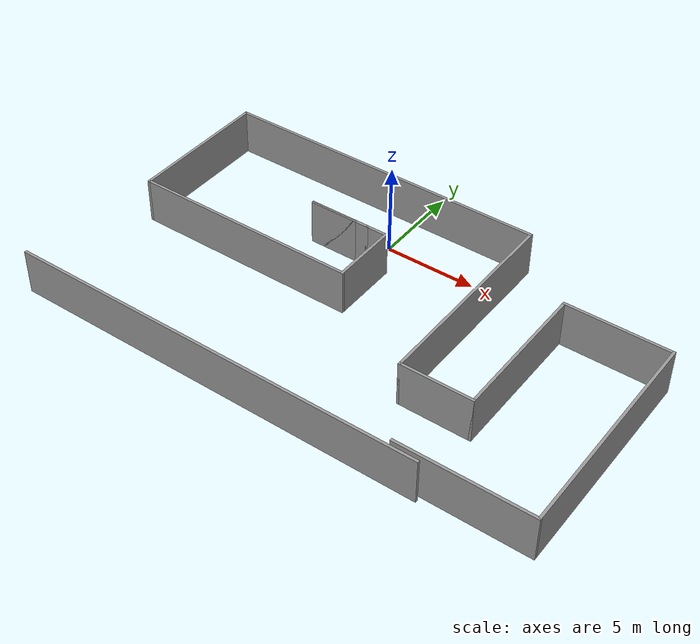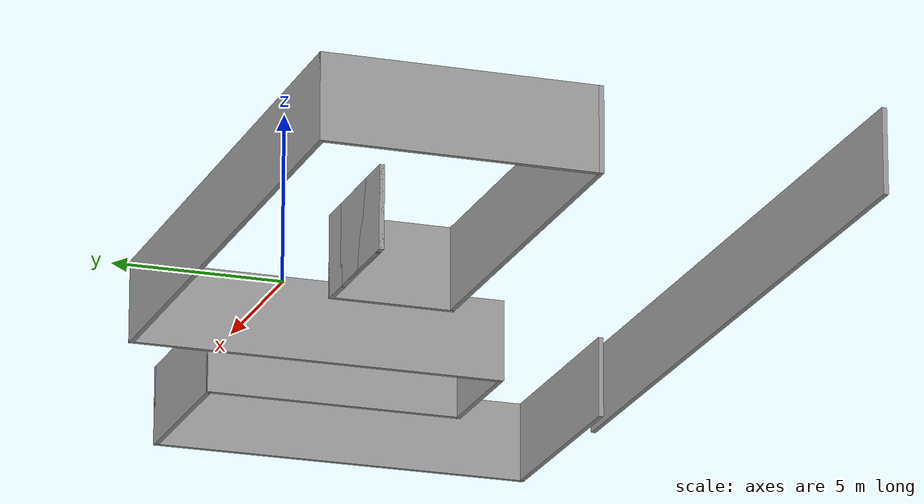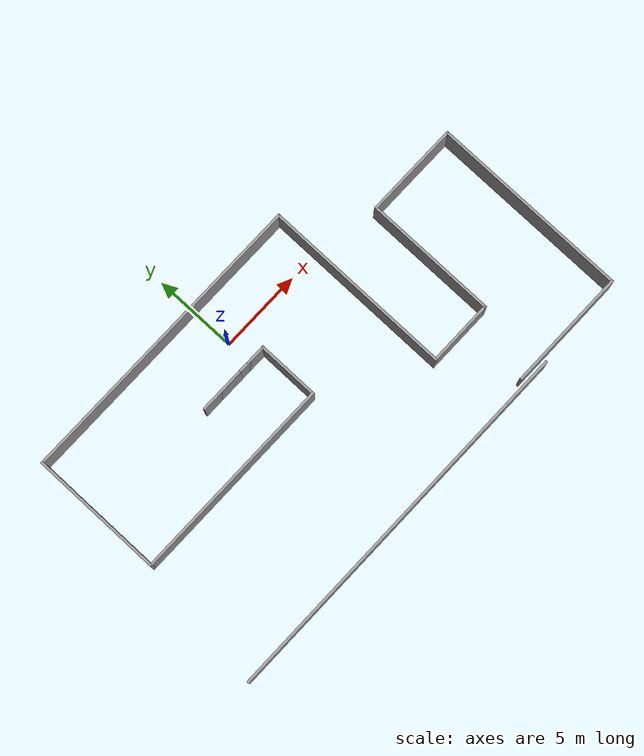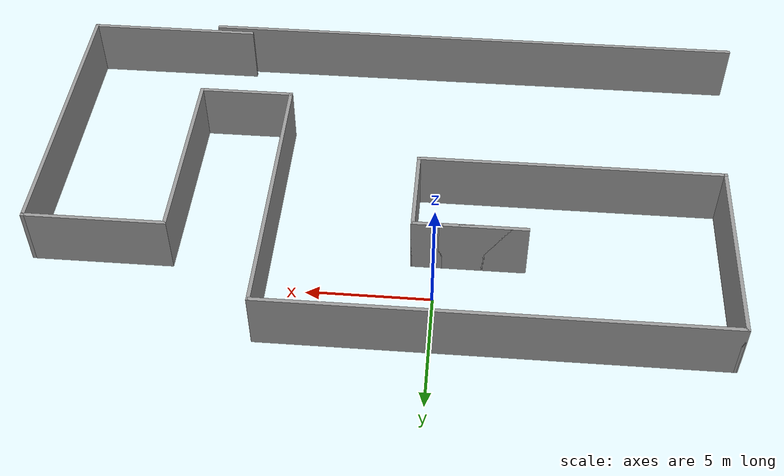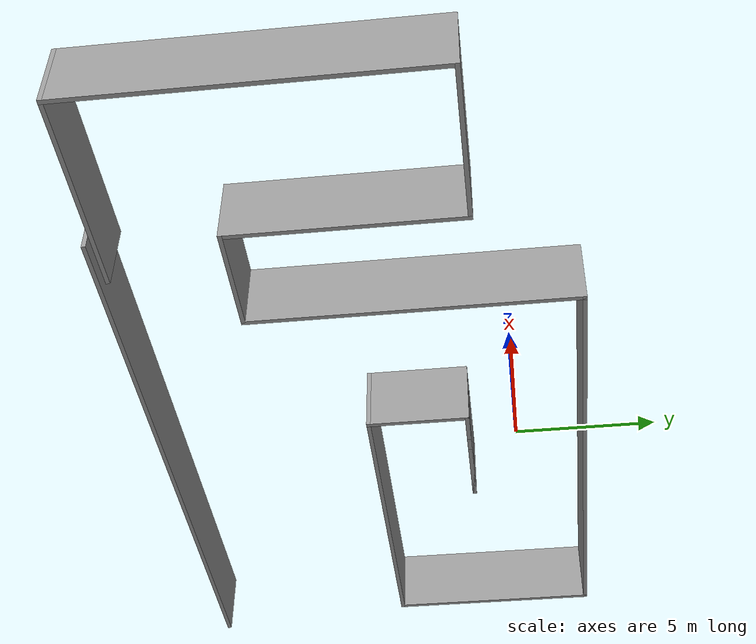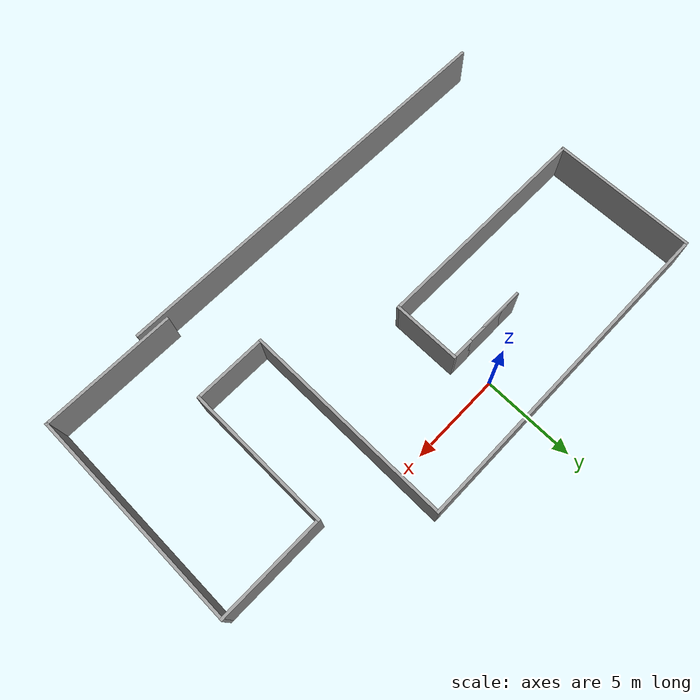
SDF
<?xml version='1.0'?>
<sdf version='1.7'>
  <model name='building'>
    <pose>1.885 -5.35 0 0 -0 0</pose>
    <link name='Wall_0'>
      <collision name='Wall_0_Collision'>
        <geometry>
          <box>
            <size>2.75 0.15 2.5</size>
          </box>
        </geometry>
        <pose>0 0 1.25 0 -0 0</pose>
      </collision>
      <visual name='Wall_0_Visual'>
        <pose>0 0 1.25 0 -0 0</pose>
        <geometry>
          <box>
            <size>2.75 0.15 2.5</size>
          </box>
        </geometry>
        <material>
          <script>
            <uri>file://media/materials/scripts/gazebo.material</uri>
            <name>Gazebo/Grey</name>
          </script>
          <ambient>1 1 1 1</ambient>
        </material>
        <meta>
          <layer>0</layer>
        </meta>
      </visual>
      <pose>-4.125 3.6 0 0 -0 3.14159</pose>
    </link>
    <link name='Wall_1'>
      <collision name='Wall_1_Collision'>
        <geometry>
          <box>
            <size>3.5 0.15 2.5</size>
          </box>
        </geometry>
        <pose>0 0 1.25 0 -0 0</pose>
      </collision>
      <visual name='Wall_1_Visual'>
        <pose>0 0 1.25 0 -0 0</pose>
        <geometry>
          <box>
            <size>3.5 0.15 2.5</size>
          </box>
        </geometry>
        <material>
          <script>
            <uri>file://media/materials/scripts/gazebo.material</uri>
            <name>Gazebo/Grey</name>
          </script>
          <ambient>1 1 1 1</ambient>
        </material>
        <meta>
          <layer>0</layer>
        </meta>
      </visual>
      <pose>-3.75 3.6 0 0 -0 0</pose>
    </link>
    <link name='Wall_10'>
      <collision name='Wall_10_Collision'>
        <geometry>
          <box>
            <size>4 0.15 2.5</size>
          </box>
        </geometry>
        <pose>0 0 1.25 0 -0 0</pose>
      </collision>
      <visual name='Wall_10_Visual'>
        <pose>0 0 1.25 0 -0 0</pose>
        <geometry>
          <box>
            <size>4 0.15 2.5</size>
          </box>
        </geometry>
        <material>
          <script>
            <uri>file://media/materials/scripts/gazebo.material</uri>
            <name>Gazebo/Grey</name>
          </script>
          <ambient>1 1 1 1</ambient>
        </material>
        <meta>
          <layer>0</layer>
        </meta>
      </visual>
      <pose>6.7 -3.5 0 0 -0 0</pose>
    </link>
    <link name='Wall_16'>
      <collision name='Wall_16_Collision'>
        <geometry>
          <box>
            <size>23 0.15 2.5</size>
          </box>
        </geometry>
        <pose>0 0 1.25 0 -0 0</pose>
      </collision>
      <visual name='Wall_16_Visual'>
        <pose>0 0 1.25 0 -0 0</pose>
        <geometry>
          <box>
            <size>23 0.15 2.5</size>
          </box>
        </geometry>
        <material>
          <script>
            <uri>file://media/materials/scripts/gazebo.material</uri>
            <name>Gazebo/Grey</name>
          </script>
          <ambient>1 1 1 1</ambient>
        </material>
        <meta>
          <layer>0</layer>
        </meta>
      </visual>
      <pose>-2.8 -7.85 0 0 -0 3.14159</pose>
    </link>
    <link name='Wall_18'>
      <collision name='Wall_18_Collision'>
        <geometry>
          <box>
            <size>8 0.15 2.5</size>
          </box>
        </geometry>
        <pose>0 0 1.25 0 -0 0</pose>
      </collision>
      <visual name='Wall_18_Visual'>
        <pose>0 0 1.25 0 -0 0</pose>
        <geometry>
          <box>
            <size>8 0.15 2.5</size>
          </box>
        </geometry>
        <material>
          <script>
            <uri>file://media/materials/scripts/gazebo.material</uri>
            <name>Gazebo/Grey</name>
          </script>
          <ambient>1 1 1 1</ambient>
        </material>
        <meta>
          <layer>0</layer>
        </meta>
      </visual>
      <pose>8.625 0.424999 0 0 -0 1.5708</pose>
    </link>
    <link name='Wall_19'>
      <collision name='Wall_19_Collision'>
        <geometry>
          <box>
            <size>5.75 0.15 2.5</size>
          </box>
        </geometry>
        <pose>0 0 1.25 0 -0 0</pose>
      </collision>
      <visual name='Wall_19_Visual'>
        <pose>0 0 1.25 0 -0 0</pose>
        <geometry>
          <box>
            <size>5.75 0.15 2.5</size>
          </box>
        </geometry>
        <material>
          <script>
            <uri>file://media/materials/scripts/gazebo.material</uri>
            <name>Gazebo/Grey</name>
          </script>
          <ambient>1 1 1 1</ambient>
        </material>
        <meta>
          <layer>0</layer>
        </meta>
      </visual>
      <pose>11.425 4.35 0 0 -0 0</pose>
    </link>
    <link name='Wall_2'>
      <collision name='Wall_2_Collision'>
        <geometry>
          <box>
            <size>1.25 0.15 2.5</size>
          </box>
        </geometry>
        <pose>0 0 1.25 0 -0 0</pose>
      </collision>
      <visual name='Wall_2_Visual'>
        <pose>0 0 1.25 0 -0 0</pose>
        <geometry>
          <box>
            <size>1.25 0.15 2.5</size>
          </box>
        </geometry>
        <material>
          <script>
            <uri>file://media/materials/scripts/gazebo.material</uri>
            <name>Gazebo/Grey</name>
          </script>
          <ambient>1 1 1 1</ambient>
        </material>
        <meta>
          <layer>0</layer>
        </meta>
      </visual>
      <pose>-1.525 3.6 0 0 -0 0</pose>
    </link>
    <link name='Wall_20'>
      <collision name='Wall_20_Collision'>
        <geometry>
          <box>
            <size>12 0.15 2.5</size>
          </box>
        </geometry>
        <pose>0 0 1.25 0 -0 0</pose>
      </collision>
      <visual name='Wall_20_Visual'>
        <pose>0 0 1.25 0 -0 0</pose>
        <geometry>
          <box>
            <size>12 0.15 2.5</size>
          </box>
        </geometry>
        <material>
          <script>
            <uri>file://media/materials/scripts/gazebo.material</uri>
            <name>Gazebo/Grey</name>
          </script>
          <ambient>1 1 1 1</ambient>
        </material>
        <meta>
          <layer>0</layer>
        </meta>
      </visual>
      <pose>14.225 -1.575 0 0 -0 -1.5708</pose>
    </link>
    <link name='Wall_21'>
      <collision name='Wall_21_Collision'>
        <geometry>
          <box>
            <size>7.25 0.15 2.5</size>
          </box>
        </geometry>
        <pose>0 0 1.25 0 -0 0</pose>
      </collision>
      <visual name='Wall_21_Visual'>
        <pose>0 0 1.25 0 -0 0</pose>
        <geometry>
          <box>
            <size>7.25 0.15 2.5</size>
          </box>
        </geometry>
        <material>
          <script>
            <uri>file://media/materials/scripts/gazebo.material</uri>
            <name>Gazebo/Grey</name>
          </script>
          <ambient>1 1 1 1</ambient>
        </material>
        <meta>
          <layer>0</layer>
        </meta>
      </visual>
      <pose>10.675 -7.5 0 0 -0 3.14159</pose>
    </link>
    <link name='Wall_3'>
      <collision name='Wall_3_Collision'>
        <geometry>
          <box>
            <size>3.75 0.15 2.5</size>
          </box>
        </geometry>
        <pose>0 0 1.25 0 -0 0</pose>
      </collision>
      <visual name='Wall_3_Visual'>
        <pose>0 0 1.25 0 -0 0</pose>
        <geometry>
          <box>
            <size>3.75 0.15 2.5</size>
          </box>
        </geometry>
        <material>
          <script>
            <uri>file://media/materials/scripts/gazebo.material</uri>
            <name>Gazebo/Grey</name>
          </script>
          <ambient>1 1 1 1</ambient>
        </material>
        <meta>
          <layer>0</layer>
        </meta>
      </visual>
      <pose>-0.975001 1.8 0 0 -0 -1.5708</pose>
    </link>
    <link name='Wall_6'>
      <collision name='Wall_6_Collision'>
        <geometry>
          <box>
            <size>12.5 0.15 2.5</size>
          </box>
        </geometry>
        <pose>0 0 1.25 0 -0 0</pose>
      </collision>
      <visual name='Wall_6_Visual'>
        <pose>0 0 1.25 0 -0 0</pose>
        <geometry>
          <box>
            <size>12.5 0.15 2.5</size>
          </box>
        </geometry>
        <material>
          <script>
            <uri>file://media/materials/scripts/gazebo.material</uri>
            <name>Gazebo/Grey</name>
          </script>
          <ambient>1 1 1 1</ambient>
        </material>
        <meta>
          <layer>0</layer>
        </meta>
      </visual>
      <pose>-7.15 -0 0 0 -0 3.14159</pose>
    </link>
    <link name='Wall_7'>
      <collision name='Wall_7_Collision'>
        <geometry>
          <box>
            <size>8 0.15 2.5</size>
          </box>
        </geometry>
        <pose>0 0 1.25 0 -0 0</pose>
      </collision>
      <visual name='Wall_7_Visual'>
        <pose>0 0 1.25 0 -0 0</pose>
        <geometry>
          <box>
            <size>8 0.15 2.5</size>
          </box>
        </geometry>
        <material>
          <script>
            <uri>file://media/materials/scripts/gazebo.material</uri>
            <name>Gazebo/Grey</name>
          </script>
          <ambient>1 1 1 1</ambient>
        </material>
        <meta>
          <layer>0</layer>
        </meta>
      </visual>
      <pose>-13.325 3.925 0 0 -0 1.5708</pose>
    </link>
    <link name='Wall_8'>
      <collision name='Wall_8_Collision'>
        <geometry>
          <box>
            <size>18.25 0.15 2.5</size>
          </box>
        </geometry>
        <pose>0 0 1.25 0 -0 0</pose>
      </collision>
      <visual name='Wall_8_Visual'>
        <pose>0 0 1.25 0 -0 0</pose>
        <geometry>
          <box>
            <size>18.25 0.15 2.5</size>
          </box>
        </geometry>
        <material>
          <script>
            <uri>file://media/materials/scripts/gazebo.material</uri>
            <name>Gazebo/Grey</name>
          </script>
          <ambient>1 1 1 1</ambient>
        </material>
        <meta>
          <layer>0</layer>
        </meta>
      </visual>
      <pose>-4.275 7.85 0 0 -0 0</pose>
    </link>
    <link name='Wall_9'>
      <collision name='Wall_9_Collision'>
        <geometry>
          <box>
            <size>11.5 0.15 2.5</size>
          </box>
        </geometry>
        <pose>0 0 1.25 0 -0 0</pose>
      </collision>
      <visual name='Wall_9_Visual'>
        <pose>0 0 1.25 0 -0 0</pose>
        <geometry>
          <box>
            <size>11.5 0.15 2.5</size>
          </box>
        </geometry>
        <material>
          <script>
            <uri>file://media/materials/scripts/gazebo.material</uri>
            <name>Gazebo/Grey</name>
          </script>
          <ambient>1 1 1 1</ambient>
        </material>
        <meta>
          <layer>0</layer>
        </meta>
      </visual>
      <pose>4.775 2.175 0 0 -0 -1.5708</pose>
    </link>
    <static>1</static>
  </model>
</sdf>
